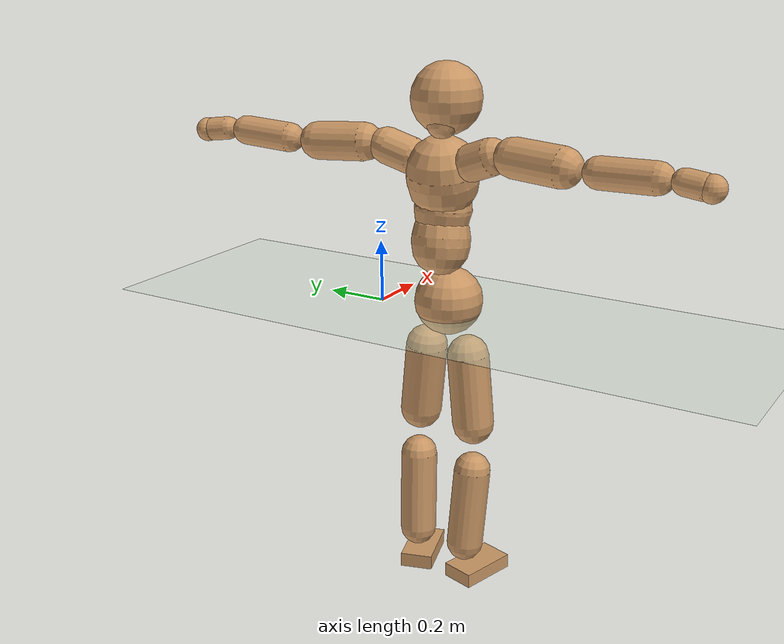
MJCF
<mujoco model="humanoid">
  <compiler coordinate="local"/>
  <default>
    <joint damping="0.0" armature="0.01" stiffness="0.0" limited="true"/>
    <geom conaffinity="1" condim="3" contype="7" margin="0.001" rgba="0.8 0.6 .4 1"/>
  </default>
  <asset>
    <texture type="skybox" builtin="gradient" rgb1=".4 .5 .6" rgb2="0 0 0" width="100" height="100"/>
    <texture builtin="flat" height="1278" mark="cross" markrgb="1 1 1" name="texgeom" random="0.01" rgb1="0.8 0.6 0.4" rgb2="0.8 0.6 0.4" type="cube" width="127"/>
    <texture builtin="checker" height="100" name="texplane" rgb1="0 0 0" rgb2="0.8 0.8 0.8" type="2d" width="100"/>
    <material name="MatPlane" reflectance="0.5" shininess="1" specular="1" texrepeat="60 60" texture="texplane"/>
    <material name="geom" texture="texgeom" texuniform="true"/>
  </asset>
  <worldbody>
    <light cutoff="100" diffuse="1 1 1" dir="-0 0 -1.3" directional="true" exponent="1" pos="0 0 1.3" specular=".1 .1 .1"/>
    <geom conaffinity="1" condim="3" name="floor" pos="0 0 0" rgba="0.8 0.9 0.8 1" size="100 100 .2" type="plane" material="MatPlane"/>
    <body name="Pelvis" pos="-0.0013 -0.2515 0.0428">
      <freejoint name="Pelvis"/>
      <geom type="sphere" contype="1" conaffinity="1" density="500" size="0.1094" pos="0.0000 0.0000 0.0000" name="Pelvis"/>
      <body name="L_Hip" pos="-0.0118 0.0663 -0.0861">
        <joint name="L_Hip_x" type="hinge" pos="0 0 0" axis="1 0 0" stiffness="800" damping="80" armature="0.02" range="-180.0000 180.0000"/>
        <joint name="L_Hip_y" type="hinge" pos="0 0 0" axis="0 1 0" stiffness="800" damping="80" armature="0.02" range="-180.0000 180.0000"/>
        <joint name="L_Hip_z" type="hinge" pos="0 0 0" axis="0 0 1" stiffness="800" damping="80" armature="0.02" range="-180.0000 180.0000"/>
        <geom type="capsule" contype="1" conaffinity="1" density="500" fromto="0.0010 0.0078 -0.0761 0.0038 0.0314 -0.3046" size="0.0674" name="L_Hip"/>
        <body name="L_Knee" pos="0.0048 0.0392 -0.3807">
          <joint name="L_Knee_x" type="hinge" pos="0 0 0" axis="1 0 0" stiffness="800" damping="80" armature="0.02" range="-180.0000 180.0000"/>
          <joint name="L_Knee_y" type="hinge" pos="0 0 0" axis="0 1 0" stiffness="800" damping="80" armature="0.02" range="-180.0000 180.0000"/>
          <joint name="L_Knee_z" type="hinge" pos="0 0 0" axis="0 0 1" stiffness="800" damping="80" armature="0.02" range="-180.0000 180.0000"/>
          <geom type="capsule" contype="1" conaffinity="1" density="500" fromto="-0.0083 -0.0036 -0.0881 -0.0334 -0.0143 -0.3523" size="0.0599" name="L_Knee"/>
          <body name="L_Ankle" pos="-0.0417 -0.0178 -0.4404">
            <joint name="L_Ankle_x" type="hinge" pos="0 0 0" axis="1 0 0" stiffness="800" damping="80" armature="0.02" range="-180.0000 180.0000"/>
            <joint name="L_Ankle_y" type="hinge" pos="0 0 0" axis="0 1 0" stiffness="800" damping="80" armature="0.02" range="-180.0000 180.0000"/>
            <joint name="L_Ankle_z" type="hinge" pos="0 0 0" axis="0 0 1" stiffness="800" damping="80" armature="0.02" range="-180.0000 180.0000"/>
            <geom type="box" contype="1" conaffinity="1" density="500" pos="0.0643 0.0191 -0.0310" size="0.0951 0.053 0.024" quat="0.9896 0.0000 0.0000 0.1437" name="L_Ankle"/>
            <body name="L_Toe" pos="0.1286 0.0381 -0.062">
              <joint name="L_Toe_x" type="hinge" pos="0 0 0" axis="1 0 0" stiffness="500" damping="50" armature="0.02" range="-180.0000 180.0000"/>
              <joint name="L_Toe_y" type="hinge" pos="0 0 0" axis="0 1 0" stiffness="500" damping="50" armature="0.02" range="-180.0000 180.0000"/>
              <joint name="L_Toe_z" type="hinge" pos="0 0 0" axis="0 0 1" stiffness="500" damping="50" armature="0.02" range="-180.0000 180.0000"/>
              <geom type="box" contype="1" conaffinity="1" density="500" pos="0.0000 0.0000 0.0298" size="0.0011 0.0026 0.0011" quat="0.9889 0.0000 0.0000 0.1486" name="L_Toe"/>
            </body>
          </body>
        </body>
      </body>
      <body name="R_Hip" pos="-0.0061 -0.068 -0.095">
        <joint name="R_Hip_x" type="hinge" pos="0 0 0" axis="1 0 0" stiffness="800" damping="80" armature="0.02" range="-180.0000 180.0000"/>
        <joint name="R_Hip_y" type="hinge" pos="0 0 0" axis="0 1 0" stiffness="800" damping="80" armature="0.02" range="-180.0000 180.0000"/>
        <joint name="R_Hip_z" type="hinge" pos="0 0 0" axis="0 0 1" stiffness="800" damping="80" armature="0.02" range="-180.0000 180.0000"/>
        <geom type="capsule" contype="1" conaffinity="1" density="500" fromto="-0.0017 -0.0082 -0.0763 -0.0067 -0.0326 -0.3053" size="0.0671" name="R_Hip"/>
        <body name="R_Knee" pos="-0.0084 -0.0408 -0.3817">
          <joint name="R_Knee_x" type="hinge" pos="0 0 0" axis="1 0 0" stiffness="800" damping="80" armature="0.02" range="-180.0000 180.0000"/>
          <joint name="R_Knee_y" type="hinge" pos="0 0 0" axis="0 1 0" stiffness="800" damping="80" armature="0.02" range="-180.0000 180.0000"/>
          <joint name="R_Knee_z" type="hinge" pos="0 0 0" axis="0 0 1" stiffness="800" damping="80" armature="0.02" range="-180.0000 180.0000"/>
          <geom type="capsule" contype="1" conaffinity="1" density="500" fromto="-0.0078 0.0041 -0.0866 -0.0311 0.0162 -0.3465" size="0.06" name="R_Knee"/>
          <body name="R_Ankle" pos="-0.0389 0.0203 -0.4331">
            <joint name="R_Ankle_x" type="hinge" pos="0 0 0" axis="1 0 0" stiffness="800" damping="80" armature="0.02" range="-180.0000 180.0000"/>
            <joint name="R_Ankle_y" type="hinge" pos="0 0 0" axis="0 1 0" stiffness="800" damping="80" armature="0.02" range="-180.0000 180.0000"/>
            <joint name="R_Ankle_z" type="hinge" pos="0 0 0" axis="0 0 1" stiffness="800" damping="80" armature="0.02" range="-180.0000 180.0000"/>
            <geom type="box" contype="1" conaffinity="1" density="500" pos="0.0685 -0.0190 -0.0314" size="0.0958 0.0555 0.0234" quat="0.9908 0.0000 0.0000 -0.1351" name="R_Ankle"/>
            <body name="R_Toe" pos="0.1371 -0.0381 -0.0628">
              <joint name="R_Toe_x" type="hinge" pos="0 0 0" axis="1 0 0" stiffness="500" damping="50" armature="0.02" range="-180.0000 180.0000"/>
              <joint name="R_Toe_y" type="hinge" pos="0 0 0" axis="0 1 0" stiffness="500" damping="50" armature="0.02" range="-180.0000 180.0000"/>
              <joint name="R_Toe_z" type="hinge" pos="0 0 0" axis="0 0 1" stiffness="500" damping="50" armature="0.02" range="-180.0000 180.0000"/>
              <geom type="box" contype="1" conaffinity="1" density="500" pos="0.0000 0.0000 0.0323" size="0.0012 0.0027 0.0012" quat="0.9920 0.0000 0.0000 -0.1266" name="R_Toe"/>
            </body>
          </body>
        </body>
      </body>
      <body name="Torso" pos="-0.0504 0.0049 0.133">
        <joint name="Torso_x" type="hinge" pos="0 0 0" axis="1 0 0" stiffness="1000" damping="100" armature="0.02" range="-180.0000 180.0000"/>
        <joint name="Torso_y" type="hinge" pos="0 0 0" axis="0 1 0" stiffness="1000" damping="100" armature="0.02" range="-180.0000 180.0000"/>
        <joint name="Torso_z" type="hinge" pos="0 0 0" axis="0 0 1" stiffness="1000" damping="100" armature="0.02" range="-180.0000 180.0000"/>
        <geom type="capsule" contype="1" conaffinity="1" density="500" fromto="0.0147 0.0027 0.0826 0.0098 0.0018 0.0550" size="0.0923" name="Torso"/>
        <body name="Spine" pos="0.0246 0.0045 0.1376">
          <joint name="Spine_x" type="hinge" pos="0 0 0" axis="1 0 0" stiffness="1000" damping="100" armature="0.02" range="-180.0000 180.0000"/>
          <joint name="Spine_y" type="hinge" pos="0 0 0" axis="0 1 0" stiffness="1000" damping="100" armature="0.02" range="-180.0000 180.0000"/>
          <joint name="Spine_z" type="hinge" pos="0 0 0" axis="0 0 1" stiffness="1000" damping="100" armature="0.02" range="-180.0000 180.0000"/>
          <geom type="capsule" contype="1" conaffinity="1" density="500" fromto="0.0026 -0.0020 0.0339 0.0017 -0.0013 0.0226" size="0.0901" name="Spine"/>
          <body name="Chest" pos="0.0043 -0.0033 0.0566">
            <joint name="Chest_x" type="hinge" pos="0 0 0" axis="1 0 0" stiffness="1000" damping="100" armature="0.02" range="-180.0000 180.0000"/>
            <joint name="Chest_y" type="hinge" pos="0 0 0" axis="0 1 0" stiffness="1000" damping="100" armature="0.02" range="-180.0000 180.0000"/>
            <joint name="Chest_z" type="hinge" pos="0 0 0" axis="0 0 1" stiffness="1000" damping="100" armature="0.02" range="-180.0000 180.0000"/>
            <geom type="capsule" contype="1" conaffinity="1" density="500" fromto="-0.0186 -0.0045 0.0928 -0.0124 -0.0030 0.0619" size="0.1115" name="Chest"/>
            <body name="Neck" pos="-0.0421 -0.0123 0.2225">
              <joint name="Neck_x" type="hinge" pos="0 0 0" axis="1 0 0" stiffness="500" damping="50" armature="0.02" range="-180.0000 180.0000"/>
              <joint name="Neck_y" type="hinge" pos="0 0 0" axis="0 1 0" stiffness="500" damping="50" armature="0.02" range="-180.0000 180.0000"/>
              <joint name="Neck_z" type="hinge" pos="0 0 0" axis="0 0 1" stiffness="500" damping="50" armature="0.02" range="-180.0000 180.0000"/>
              <geom type="capsule" contype="1" conaffinity="1" density="500" fromto="0.0104 0.0021 0.0168 0.0416 0.0085 0.0673" size="0.0481" name="Neck"/>
              <body name="Head" pos="0.0519 0.0106 0.0841">
                <joint name="Head_x" type="hinge" pos="0 0 0" axis="1 0 0" stiffness="500" damping="50" armature="0.02" range="-180.0000 180.0000"/>
                <joint name="Head_y" type="hinge" pos="0 0 0" axis="0 1 0" stiffness="500" damping="50" armature="0.02" range="-180.0000 180.0000"/>
                <joint name="Head_z" type="hinge" pos="0 0 0" axis="0 0 1" stiffness="500" damping="50" armature="0.02" range="-180.0000 180.0000"/>
                <geom type="sphere" contype="1" conaffinity="1" density="500" size="0.1099" pos="0.0000 0.0000 0.0000" name="Head"/>
              </body>
            </body>
            <body name="L_Thorax" pos="-0.0233 0.0738 0.1215">
              <joint name="L_Thorax_x" type="hinge" pos="0 0 0" axis="1 0 0" stiffness="500" damping="50" armature="0.02" range="-180.0000 180.0000"/>
              <joint name="L_Thorax_y" type="hinge" pos="0 0 0" axis="0 1 0" stiffness="500" damping="50" armature="0.02" range="-180.0000 180.0000"/>
              <joint name="L_Thorax_z" type="hinge" pos="0 0 0" axis="0 0 1" stiffness="500" damping="50" armature="0.02" range="-180.0000 180.0000"/>
              <geom type="capsule" contype="1" conaffinity="1" density="500" fromto="-0.0046 0.0255 0.0087 -0.0182 0.1019 0.0348" size="0.0569" name="L_Thorax"/>
              <body name="L_Shoulder" pos="-0.0228 0.1274 0.0435">
                <joint name="L_Shoulder_x" type="hinge" pos="0 0 0" axis="1 0 0" stiffness="500" damping="50" armature="0.02" range="-720.0000 720.0000"/>
                <joint name="L_Shoulder_y" type="hinge" pos="0 0 0" axis="0 1 0" stiffness="500" damping="50" armature="0.02" range="-720.0000 720.0000"/>
                <joint name="L_Shoulder_z" type="hinge" pos="0 0 0" axis="0 0 1" stiffness="500" damping="50" armature="0.02" range="-720.0000 720.0000"/>
                <geom type="capsule" contype="1" conaffinity="1" density="500" fromto="-0.0055 0.0526 -0.0028 -0.0219 0.2105 -0.0113" size="0.0599" name="L_Shoulder"/>
                <body name="L_Elbow" pos="-0.0274 0.2631 -0.0142">
                  <joint name="L_Elbow_x" type="hinge" pos="0 0 0" axis="1 0 0" stiffness="500" damping="50" armature="0.02" range="-720.0000 720.0000"/>
                  <joint name="L_Elbow_y" type="hinge" pos="0 0 0" axis="0 1 0" stiffness="500" damping="50" armature="0.02" range="-720.0000 720.0000"/>
                  <joint name="L_Elbow_z" type="hinge" pos="0 0 0" axis="0 0 1" stiffness="500" damping="50" armature="0.02" range="-720.0000 720.0000"/>
                  <geom type="capsule" contype="1" conaffinity="1" density="500" fromto="-0.0012 0.0562 0.0029 -0.0049 0.2247 0.0117" size="0.0463" name="L_Elbow"/>
                  <body name="L_Wrist" pos="-0.0061 0.2809 0.0146">
                    <joint name="L_Wrist_x" type="hinge" pos="0 0 0" axis="1 0 0" stiffness="300" damping="30" armature="0.02" range="-180.0000 180.0000"/>
                    <joint name="L_Wrist_y" type="hinge" pos="0 0 0" axis="0 1 0" stiffness="300" damping="30" armature="0.02" range="-180.0000 180.0000"/>
                    <joint name="L_Wrist_z" type="hinge" pos="0 0 0" axis="0 0 1" stiffness="300" damping="30" armature="0.02" range="-180.0000 180.0000"/>
                    <geom type="capsule" contype="1" conaffinity="1" density="500" fromto="-0.0034 0.0187 -0.0023 -0.0135 0.0749 -0.0091" size="0.037" name="L_Wrist"/>
                    <body name="L_Hand" pos="-0.0169 0.0936 -0.0114">
                      <joint name="L_Hand_x" type="hinge" pos="0 0 0" axis="1 0 0" stiffness="300" damping="30" armature="0.02" range="-180.0000 180.0000"/>
                      <joint name="L_Hand_y" type="hinge" pos="0 0 0" axis="0 1 0" stiffness="300" damping="30" armature="0.02" range="-180.0000 180.0000"/>
                      <joint name="L_Hand_z" type="hinge" pos="0 0 0" axis="0 0 1" stiffness="300" damping="30" armature="0.02" range="-180.0000 180.0000"/>
                      <geom type="sphere" contype="1" conaffinity="1" density="500" size="0.0384" pos="0.0000 0.0000 0.0000" name="L_Hand"/>
                    </body>
                  </body>
                </body>
              </body>
            </body>
            <body name="R_Thorax" pos="-0.0273 -0.0842 0.1199">
              <joint name="R_Thorax_x" type="hinge" pos="0 0 0" axis="1 0 0" stiffness="500" damping="50" armature="0.02" range="-180.0000 180.0000"/>
              <joint name="R_Thorax_y" type="hinge" pos="0 0 0" axis="0 1 0" stiffness="500" damping="50" armature="0.02" range="-180.0000 180.0000"/>
              <joint name="R_Thorax_z" type="hinge" pos="0 0 0" axis="0 0 1" stiffness="500" damping="50" armature="0.02" range="-180.0000 180.0000"/>
              <geom type="capsule" contype="1" conaffinity="1" density="500" fromto="-0.0022 -0.0235 0.0091 -0.0086 -0.0942 0.0363" size="0.0569" name="R_Thorax"/>
              <body name="R_Shoulder" pos="-0.0108 -0.1177 0.0453">
                <joint name="R_Shoulder_x" type="hinge" pos="0 0 0" axis="1 0 0" stiffness="500" damping="50" armature="0.02" range="-720.0000 720.0000"/>
                <joint name="R_Shoulder_y" type="hinge" pos="0 0 0" axis="0 1 0" stiffness="500" damping="50" armature="0.02" range="-720.0000 720.0000"/>
                <joint name="R_Shoulder_z" type="hinge" pos="0 0 0" axis="0 0 1" stiffness="500" damping="50" armature="0.02" range="-720.0000 720.0000"/>
                <geom type="capsule" contype="1" conaffinity="1" density="500" fromto="-0.0074 -0.0544 -0.0022 -0.0296 -0.2175 -0.0088" size="0.0607" name="R_Shoulder"/>
                <body name="R_Elbow" pos="-0.037 -0.2719 -0.0109">
                  <joint name="R_Elbow_x" type="hinge" pos="0 0 0" axis="1 0 0" stiffness="500" damping="50" armature="0.02" range="-720.0000 720.0000"/>
                  <joint name="R_Elbow_y" type="hinge" pos="0 0 0" axis="0 1 0" stiffness="500" damping="50" armature="0.02" range="-720.0000 720.0000"/>
                  <joint name="R_Elbow_z" type="hinge" pos="0 0 0" axis="0 0 1" stiffness="500" damping="50" armature="0.02" range="-720.0000 720.0000"/>
                  <geom type="capsule" contype="1" conaffinity="1" density="500" fromto="-0.0014 -0.0566 0.0015 -0.0054 -0.2265 0.0058" size="0.0471" name="R_Elbow"/>
                  <body name="R_Wrist" pos="-0.0068 -0.2831 0.0073">
                    <joint name="R_Wrist_x" type="hinge" pos="0 0 0" axis="1 0 0" stiffness="300" damping="30" armature="0.02" range="-180.0000 180.0000"/>
                    <joint name="R_Wrist_y" type="hinge" pos="0 0 0" axis="0 1 0" stiffness="300" damping="30" armature="0.02" range="-180.0000 180.0000"/>
                    <joint name="R_Wrist_z" type="hinge" pos="0 0 0" axis="0 0 1" stiffness="300" damping="30" armature="0.02" range="-180.0000 180.0000"/>
                    <geom type="capsule" contype="1" conaffinity="1" density="500" fromto="-0.0022 -0.0193 -0.0019 -0.0086 -0.0773 -0.0077" size="0.0382" name="R_Wrist"/>
                    <body name="R_Hand" pos="-0.0108 -0.0966 -0.0096">
                      <joint name="R_Hand_x" type="hinge" pos="0 0 0" axis="1 0 0" stiffness="300" damping="30" armature="0.02" range="-180.0000 180.0000"/>
                      <joint name="R_Hand_y" type="hinge" pos="0 0 0" axis="0 1 0" stiffness="300" damping="30" armature="0.02" range="-180.0000 180.0000"/>
                      <joint name="R_Hand_z" type="hinge" pos="0 0 0" axis="0 0 1" stiffness="300" damping="30" armature="0.02" range="-180.0000 180.0000"/>
                      <geom type="sphere" contype="1" conaffinity="1" density="500" size="0.0393" pos="0.0000 0.0000 0.0000" name="R_Hand"/>
                    </body>
                  </body>
                </body>
              </body>
            </body>
          </body>
        </body>
      </body>
    </body>
  </worldbody>
  <actuator>
    <motor name="L_Hip_x" joint="L_Hip_x" gear="500"/>
    <motor name="L_Hip_y" joint="L_Hip_y" gear="500"/>
    <motor name="L_Hip_z" joint="L_Hip_z" gear="500"/>
    <motor name="L_Knee_x" joint="L_Knee_x" gear="500"/>
    <motor name="L_Knee_y" joint="L_Knee_y" gear="500"/>
    <motor name="L_Knee_z" joint="L_Knee_z" gear="500"/>
    <motor name="L_Ankle_x" joint="L_Ankle_x" gear="500"/>
    <motor name="L_Ankle_y" joint="L_Ankle_y" gear="500"/>
    <motor name="L_Ankle_z" joint="L_Ankle_z" gear="500"/>
    <motor name="L_Toe_x" joint="L_Toe_x" gear="500"/>
    <motor name="L_Toe_y" joint="L_Toe_y" gear="500"/>
    <motor name="L_Toe_z" joint="L_Toe_z" gear="500"/>
    <motor name="R_Hip_x" joint="R_Hip_x" gear="500"/>
    <motor name="R_Hip_y" joint="R_Hip_y" gear="500"/>
    <motor name="R_Hip_z" joint="R_Hip_z" gear="500"/>
    <motor name="R_Knee_x" joint="R_Knee_x" gear="500"/>
    <motor name="R_Knee_y" joint="R_Knee_y" gear="500"/>
    <motor name="R_Knee_z" joint="R_Knee_z" gear="500"/>
    <motor name="R_Ankle_x" joint="R_Ankle_x" gear="500"/>
    <motor name="R_Ankle_y" joint="R_Ankle_y" gear="500"/>
    <motor name="R_Ankle_z" joint="R_Ankle_z" gear="500"/>
    <motor name="R_Toe_x" joint="R_Toe_x" gear="500"/>
    <motor name="R_Toe_y" joint="R_Toe_y" gear="500"/>
    <motor name="R_Toe_z" joint="R_Toe_z" gear="500"/>
    <motor name="Torso_x" joint="Torso_x" gear="500"/>
    <motor name="Torso_y" joint="Torso_y" gear="500"/>
    <motor name="Torso_z" joint="Torso_z" gear="500"/>
    <motor name="Spine_x" joint="Spine_x" gear="500"/>
    <motor name="Spine_y" joint="Spine_y" gear="500"/>
    <motor name="Spine_z" joint="Spine_z" gear="500"/>
    <motor name="Chest_x" joint="Chest_x" gear="500"/>
    <motor name="Chest_y" joint="Chest_y" gear="500"/>
    <motor name="Chest_z" joint="Chest_z" gear="500"/>
    <motor name="Neck_x" joint="Neck_x" gear="500"/>
    <motor name="Neck_y" joint="Neck_y" gear="500"/>
    <motor name="Neck_z" joint="Neck_z" gear="500"/>
    <motor name="Head_x" joint="Head_x" gear="500"/>
    <motor name="Head_y" joint="Head_y" gear="500"/>
    <motor name="Head_z" joint="Head_z" gear="500"/>
    <motor name="L_Thorax_x" joint="L_Thorax_x" gear="500"/>
    <motor name="L_Thorax_y" joint="L_Thorax_y" gear="500"/>
    <motor name="L_Thorax_z" joint="L_Thorax_z" gear="500"/>
    <motor name="L_Shoulder_x" joint="L_Shoulder_x" gear="500"/>
    <motor name="L_Shoulder_y" joint="L_Shoulder_y" gear="500"/>
    <motor name="L_Shoulder_z" joint="L_Shoulder_z" gear="500"/>
    <motor name="L_Elbow_x" joint="L_Elbow_x" gear="500"/>
    <motor name="L_Elbow_y" joint="L_Elbow_y" gear="500"/>
    <motor name="L_Elbow_z" joint="L_Elbow_z" gear="500"/>
    <motor name="L_Wrist_x" joint="L_Wrist_x" gear="500"/>
    <motor name="L_Wrist_y" joint="L_Wrist_y" gear="500"/>
    <motor name="L_Wrist_z" joint="L_Wrist_z" gear="500"/>
    <motor name="L_Hand_x" joint="L_Hand_x" gear="500"/>
    <motor name="L_Hand_y" joint="L_Hand_y" gear="500"/>
    <motor name="L_Hand_z" joint="L_Hand_z" gear="500"/>
    <motor name="R_Thorax_x" joint="R_Thorax_x" gear="500"/>
    <motor name="R_Thorax_y" joint="R_Thorax_y" gear="500"/>
    <motor name="R_Thorax_z" joint="R_Thorax_z" gear="500"/>
    <motor name="R_Shoulder_x" joint="R_Shoulder_x" gear="500"/>
    <motor name="R_Shoulder_y" joint="R_Shoulder_y" gear="500"/>
    <motor name="R_Shoulder_z" joint="R_Shoulder_z" gear="500"/>
    <motor name="R_Elbow_x" joint="R_Elbow_x" gear="500"/>
    <motor name="R_Elbow_y" joint="R_Elbow_y" gear="500"/>
    <motor name="R_Elbow_z" joint="R_Elbow_z" gear="500"/>
    <motor name="R_Wrist_x" joint="R_Wrist_x" gear="500"/>
    <motor name="R_Wrist_y" joint="R_Wrist_y" gear="500"/>
    <motor name="R_Wrist_z" joint="R_Wrist_z" gear="500"/>
    <motor name="R_Hand_x" joint="R_Hand_x" gear="500"/>
    <motor name="R_Hand_y" joint="R_Hand_y" gear="500"/>
    <motor name="R_Hand_z" joint="R_Hand_z" gear="500"/>
  </actuator>
  <contact>
    <exclude body1="Torso" body2="Chest"/>
    <exclude body1="Head" body2="Chest"/>
    <exclude body1="R_Knee" body2="R_Toe"/>
    <exclude body1="R_Knee" body2="L_Ankle"/>
    <exclude body1="R_Knee" body2="L_Toe"/>
    <exclude body1="L_Knee" body2="L_Toe"/>
    <exclude body1="L_Knee" body2="R_Ankle"/>
    <exclude body1="L_Knee" body2="R_Toe"/>
    <exclude body1="L_Shoulder" body2="Chest"/>
    <exclude body1="R_Shoulder" body2="Chest"/>
  </contact>
  <sensor/>
  <size njmax="700" nconmax="700"/>
</mujoco>
